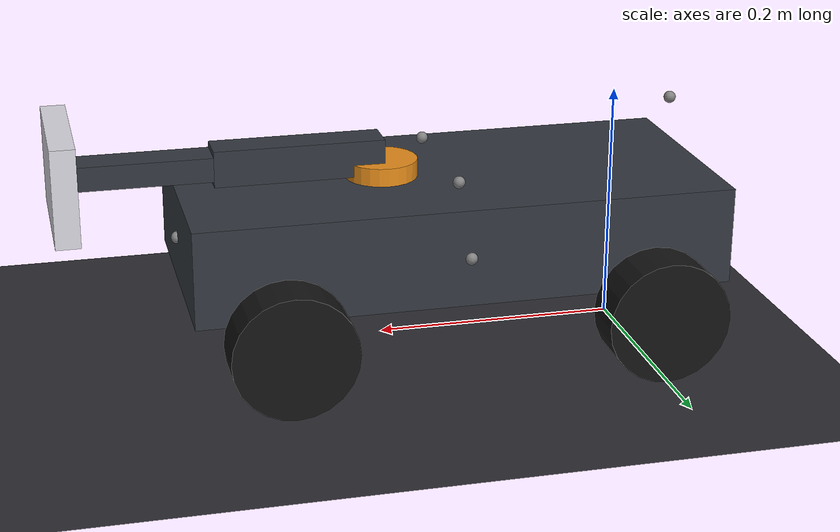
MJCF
<mujoco model="air26_rover">
  <compiler angle="radian" eulerseq="xyz" autolimits="true"/>
  <option timestep="0.002" gravity="0 0 -9.81" integrator="implicitfast"/>

  <default>
    <joint damping="0.05"/>
    <!-- robot links: group 0, not ray-detectable -->
    <default class="robot">
      <geom group="0" rgba="0.2 0.22 0.25 1" friction="1.0 0.01 0.001"/>
    </default>
    <default class="wheel_front">
      <geom group="0" rgba="0.08 0.08 0.08 1" friction="1.5 0.02 0.002"/>
    </default>
    <default class="wheel_rear">
      <!-- reduced slide friction -> rear pair scrubs on steady turns -->
      <geom group="0" rgba="0.08 0.08 0.08 1" friction="0.7 0.005 0.0005"/>
    </default>
    <!-- detectable environment: group 3 -->
    <default class="obstacle">
      <geom group="3" rgba="0.9 0.55 0.1 1"/>
    </default>
    <default class="wall">
      <geom group="3" rgba="0.35 0.35 0.4 1"/>
    </default>
  </default>

  <asset>
    <texture name="grid" type="2d" builtin="checker" rgb1="0.15 0.15 0.17"
             rgb2="0.2 0.2 0.22" width="512" height="512"/>
    <material name="grid" texture="grid" texrepeat="20 20" reflectance="0.1"/>
  </asset>

  <worldbody>
    <light pos="0 0 3" dir="0 0 -1" diffuse="0.8 0.8 0.8"/>
    <geom name="floor" type="plane" size="10 10 0.1" material="grid"
          friction="1.0 0.01 0.001" group="0"/>

    <!-- ================= the rover ================= -->
    <body name="base_link" pos="0 0 0.05">
      <freejoint name="chassis_free"/>
      <!-- chassis box, offset like the URDF (center between axles, above axle) -->
      <geom name="chassis" class="robot" type="box" size="0.22 0.10 0.04"
            pos="0.15 0 0.05" mass="3.0"/>

      <!-- ---- front axle: steered + rolling ---- -->
      <body name="front_left_steer_link" pos="0.30 0.13 0">
        <joint name="front_left_steer_joint" type="hinge" axis="0 0 1"
               range="-0.6 0.6"/>
        <geom class="robot" type="box" size="0.015 0.015 0.025" rgba="0.9 0.55 0.1 1"/>
        <body name="front_left_wheel_link" pos="0 0 0">
          <joint name="front_left_wheel_joint" type="hinge" axis="0 1 0"/>
          <geom class="wheel_front" type="cylinder" size="0.05 0.02" euler="1.5708 0 0"/>
        </body>
      </body>

      <body name="front_right_steer_link" pos="0.30 -0.13 0">
        <joint name="front_right_steer_joint" type="hinge" axis="0 0 1"
               range="-0.6 0.6"/>
        <geom class="robot" type="box" size="0.015 0.015 0.025" rgba="0.9 0.55 0.1 1"/>
        <body name="front_right_wheel_link" pos="0 0 0">
          <joint name="front_right_wheel_joint" type="hinge" axis="0 1 0"/>
          <geom class="wheel_front" type="cylinder" size="0.05 0.02" euler="1.5708 0 0"/>
        </body>
      </body>

      <!-- ---- rear axle: driven, no differential ---- -->
      <body name="rear_left_wheel_link" pos="0 0.13 0">
        <joint name="rear_left_wheel_joint" type="hinge" axis="0 1 0"/>
        <geom class="wheel_rear" type="cylinder" size="0.05 0.02" euler="1.5708 0 0"/>
      </body>
      <body name="rear_right_wheel_link" pos="0 -0.13 0">
        <joint name="rear_right_wheel_joint" type="hinge" axis="0 1 0"/>
        <geom class="wheel_rear" type="cylinder" size="0.05 0.02" euler="1.5708 0 0"/>
      </body>

      <!-- ---- clearing arm (3 hinges + paddle) ---- -->
      <body name="arm_base_link" pos="0.20 0 0.09">
        <joint name="arm_yaw_joint" type="hinge" axis="0 0 1" range="-1.57 1.57"/>
        <geom class="robot" type="cylinder" size="0.03 0.015" rgba="0.9 0.55 0.1 1"/>
        <body name="arm_upper_link" pos="0 0 0.02">
          <joint name="arm_shoulder_joint" type="hinge" axis="0 1 0" range="-1.2 1.2"/>
          <geom class="robot" type="box" size="0.07 0.015 0.015" pos="0.07 0 0"/>
          <body name="arm_fore_link" pos="0.14 0 0">
            <joint name="arm_elbow_joint" type="hinge" axis="0 1 0" range="-1.5 1.5"/>
            <geom class="robot" type="box" size="0.06 0.015 0.01" pos="0.06 0 0"/>
            <!-- flat swiper paddle -->
            <geom name="paddle" class="robot" type="box" size="0.01 0.06 0.04"
                  pos="0.12 0 0" rgba="0.85 0.85 0.88 1" friction="1.2 0.01 0.001"/>
          </body>
        </body>
      </body>

      <!-- ---- sensor sites (ray origins/orientations match the URDF) ---- -->
      <!-- range ring: local +x is the ray direction -->
      <site name="front_center_range" pos="0.37 0 0.05"   euler="0 0 0"/>
      <site name="front_left_range"   pos="0.35 0.08 0.05" euler="0 0 0.5"/>
      <site name="front_right_range"  pos="0.35 -0.08 0.05" euler="0 0 -0.5"/>
      <site name="left_range"         pos="0.15 0.10 0.05" euler="0 0 1.5708"/>
      <site name="right_range"        pos="0.15 -0.10 0.05" euler="0 0 -1.5708"/>
      <site name="rear_range"         pos="-0.07 0 0.05"   euler="0 0 3.14159"/>
      <site name="canopy_left_range"  pos="0.15 0.06 0.10" euler="0 -0.5 0.4"/>
      <site name="canopy_right_range" pos="0.15 -0.06 0.10" euler="0 -0.5 -0.4"/>
      <!-- rear lidar (local frame; z=pi so the 0-angle ray points to the rover rear) -->
      <site name="lidar" pos="-0.05 0 0.14" euler="0 0 3.14159"/>
    </body>

    <!-- ================= light obstacles (group 3) ================= -->
    <body name="obs_ground_1" pos="0.55 0 0.06">
      <freejoint/>
      <geom class="obstacle" type="box" size="0.05 0.05 0.06" mass="0.05"/>
    </body>
    <body name="obs_ground_2" pos="0.75 -0.14 0.06">
      <freejoint/>
      <geom class="obstacle" type="box" size="0.04 0.04 0.06" mass="0.04"/>
    </body>
    <body name="obs_ground_3" pos="0.90 0.14 0.07">
      <freejoint/>
      <geom class="obstacle" type="capsule" size="0.03 0.06" mass="0.04"/>
    </body>

    <geom name="post_left" class="wall" type="cylinder" size="0.012 0.13"
          pos="0.34 0.19 0.13"/>
    <body name="obs_canopy_1" pos="0.34 0.19 0.30">
      <freejoint/>
      <geom class="obstacle" type="box" size="0.05 0.05 0.04" mass="0.03"/>
    </body>
    <geom name="post_right" class="wall" type="cylinder" size="0.012 0.13"
          pos="0.36 -0.20 0.13"/>
    <body name="obs_canopy_2" pos="0.36 -0.20 0.30">
      <freejoint/>
      <geom class="obstacle" type="box" size="0.05 0.05 0.04" mass="0.03"/>
    </body>

    <!-- a light obstacle behind, on the rear range ray, for the backup demo -->
    <body name="obs_rear" pos="-0.35 0 0.07">
      <freejoint/>
      <geom class="obstacle" type="box" size="0.04 0.06 0.07" mass="0.06"
            rgba="0.8 0.2 0.2 1"/>
    </body>
  </worldbody>

  <!-- ================= actuators ================= -->
  <actuator>
    <!-- front steering: position servos, both commanded to the same angle -->
    <position name="steer_left"  joint="front_left_steer_joint"  kp="15" kv="1.0"
              ctrlrange="-0.6 0.6"/>
    <position name="steer_right" joint="front_right_steer_joint" kp="15" kv="1.0"
              ctrlrange="-0.6 0.6"/>
    <!-- rear drive: velocity servos, both commanded to the same wheel rate -->
    <velocity name="drive_left"  joint="rear_left_wheel_joint"  kv="0.8"/>
    <velocity name="drive_right" joint="rear_right_wheel_joint" kv="0.8"/>
    <!-- arm: position servos -->
    <position name="arm_yaw"      joint="arm_yaw_joint"      kp="5" kv="0.4"/>
    <position name="arm_shoulder" joint="arm_shoulder_joint" kp="6" kv="0.5"/>
    <position name="arm_elbow"    joint="arm_elbow_joint"    kp="4" kv="0.3"/>
  </actuator>
</mujoco>
